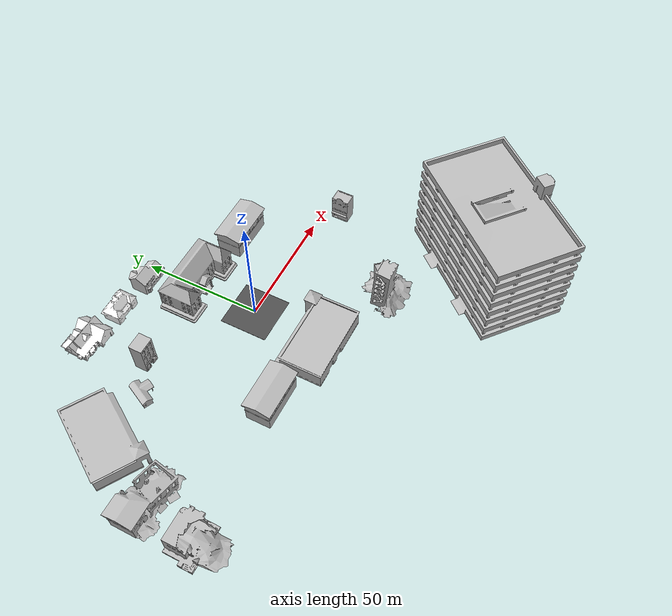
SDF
<sdf version="1.6">
 <world name="default">
  <light name="sun" type="directional">
   <pose>0 0 10 0 -0 0</pose>
   <diffuse>0.8 0.8 0.8 1</diffuse>
   <specular>0.2 0.2 0.2 1</specular>
   <attenuation>
    <range>1000</range>
    <constant>0.9</constant>
    <linear>0.01</linear>
    <quadratic>0.001</quadratic>
   </attenuation>
   <direction>-0.5 0.1 -0.9</direction>
  </light>
  <gravity>0 0 -9.8</gravity>
  <magnetic_field>6e-06 2.3e-05 -4.2e-05</magnetic_field>
  <atmosphere type="adiabatic"/>
  <physics name="default_physics" default="0" type="ode">
   <max_step_size>0.001</max_step_size>
   <real_time_factor>1</real_time_factor>
   <real_time_update_rate>1000</real_time_update_rate>
   <ode><solver><type>quick</type><iters>100</iters></solver></ode>
  </physics>
  <scene><ambient>0.4 0.4 0.4 1</ambient><background>0.7 0.7 0.7 1</background><shadows>1</shadows></scene>
  <spherical_coordinates>
   <surface_model>EARTH_WGS84</surface_model>
   <latitude_deg>10.772877</latitude_deg>
   <longitude_deg>106.659404</longitude_deg>
   <elevation>0.5</elevation>
   <heading_deg>90.0</heading_deg>
  </spherical_coordinates>
  <model name="asphalt_plane">
   <static>1</static>
   <link name="link">
    <collision name="collision"><geometry><box><size>20 20 0.1</size></box></geometry></collision>
    <visual name="visual">
     <cast_shadows>0</cast_shadows>
     <geometry><box><size>20 20 0.1</size></box></geometry>
     <material>
      <script>
       <uri>model://asphalt_plane/materials/scripts</uri>
       <uri>model://asphalt_plane/materials/textures</uri>
       <name>vrc/asphalt</name>
      </script>
     </material>
    </visual>
   </link>
  </model>
  <model name="school">
   <static>1</static>
   <link name="link">
    <collision name="collision">
     <geometry><mesh><uri>model://school/meshes/school.dae</uri></mesh></geometry>
    </collision>
    <visual name="visual"><geometry><mesh><uri>model://school/meshes/school.dae</uri></mesh></geometry></visual>
   </link>
   <pose>0.636377 29.532 0 0 -0 0</pose>
  </model>
  <model name="grocery_store">
   <static>1</static>
   <link name="link">
    <collision name="collision">
     <pose>0 0 4.04605 0 -0 0</pose>
     <geometry><box><size>32.1985 17.5425 8.09209</size></box></geometry>
    </collision>
    <visual name="visual">
     <pose>0 -1.96155 0 0 -0 0</pose>
     <geometry><mesh><uri>model://grocery_store/meshes/grocery_store.dae</uri></mesh></geometry>
    </visual>
   </link>
   <pose>-2.29865 -30.4508 0 0 -0 0</pose>
  </model>
  <model name="fire_station">
   <static>1</static>
   <link name="link">
    <collision name="main">
     <pose>0 -0.135 5 0 -0 0</pose>
     <geometry><box><size>19.98 9.68 10</size></box></geometry>
    </collision>
    <collision name="front_top">
     <pose>0 4.957 7 0 -0 0</pose>
     <geometry><box><size>20 0.515 6</size></box></geometry>
    </collision>
    <collision name="column_0">
     <pose>9.333 4.957 2 0 -0 0</pose>
     <geometry><box><size>1.315 0.515 4</size></box></geometry>
    </collision>
    <collision name="column_1">
     <pose>3.33 4.957 2 0 -0 0</pose>
     <geometry><box><size>2.63 0.515 4</size></box></geometry>
    </collision>
    <collision name="column_2">
     <pose>-3.33 4.957 2 0 -0 0</pose>
     <geometry><box><size>2.63 0.515 4</size></box></geometry>
    </collision>
    <collision name="column_3">
     <pose>-9.333 4.957 2 0 -0 0</pose>
     <geometry><box><size>1.315 0.515 4</size></box></geometry>
    </collision>
    <collision name="roof_back">
     <pose>0 -2.742 10.467 0.25 -0 0</pose>
     <geometry><box><size>21.47 6.12 0.28</size></box></geometry>
    </collision>
    <collision name="roof_front">
     <pose>0 3.12 10.467 -0.25 0 0</pose>
     <geometry><box><size>21.47 6.12 0.28</size></box></geometry>
    </collision>
    <collision name="roof_base">
     <pose>0 0.188 9.705 0 -0 0</pose>
     <geometry><box><size>21.47 11.86 0.28</size></box></geometry>
    </collision>
    <collision name="roof_filling_0">
     <pose>0 0.188 9.985 0 -0 0</pose>
     <geometry><box><size>21.47 9.53 0.28</size></box></geometry>
    </collision>
    <collision name="roof_filling_1">
     <pose>0 0.188 10.14 0 -0 0</pose>
     <geometry><box><size>21.47 8.41 0.28</size></box></geometry>
    </collision>
    <collision name="roof_filling_2">
     <pose>0 0.188 10.42 0 -0 0</pose>
     <geometry><box><size>21.47 6.25 0.28</size></box></geometry>
    </collision>
    <collision name="roof_filling_3">
     <pose>0 0.188 10.7 0 -0 0</pose>
     <geometry><box><size>21.47 4.05 0.28</size></box></geometry>
    </collision>
    <collision name="roof_filling_4">
     <pose>0 0.188 10.98 0 -0 0</pose>
     <geometry><box><size>21.47 1.83 0.28</size></box></geometry>
    </collision>
    <visual name="visual">
     <geometry><mesh><uri>model://fire_station/meshes/fire_station.dae</uri></mesh></geometry>
    </visual>
   </link>
   <pose>-32.3673 -26.015 0 0 -0 0</pose>
  </model>
  <model name="House 1">
   <static>1</static>
   <link name="link">
    <collision name="collision">
     <geometry><mesh><uri>model://house_1/meshes/house_1.dae</uri><scale>1.5 1.5 1.5</scale></mesh></geometry>
    </collision>
    <visual name="visual">
     <geometry><mesh><uri>model://house_1/meshes/house_1.dae</uri><scale>1.5 1.5 1.5</scale></mesh></geometry>
     <material>
      <script>
       <uri>model://house_1/materials/scripts</uri>
       <uri>model://house_1/materials/textures</uri>
       <name>House_1/Diffuse</name>
      </script>
      <shader type="normal_map_tangent_space"><normal_map>House_1_Normal.png</normal_map></shader>
     </material>
    </visual>
   </link>
   <pose>-41.8922 51.017 0 0 -0 0</pose>
  </model>
  <model name="House 2">
   <static>1</static>
   <link name="link">
    <collision name="collision">
     <geometry><mesh><uri>model://house_2/meshes/house_2.dae</uri><scale>1.5 1.5 1.5</scale></mesh></geometry>
    </collision>
    <visual name="visual">
     <geometry><mesh><uri>model://house_2/meshes/house_2.dae</uri><scale>1.5 1.5 1.5</scale></mesh></geometry>
     <material>
      <script>
       <uri>model://house_2/materials/scripts</uri>
       <uri>model://house_2/materials/textures</uri>
       <uri>model://house_1/materials/textures</uri>
       <name>House_2/Diffuse</name>
      </script>
      <shader type="normal_map_tangent_space">
       <normal_map>model://house_1/materials/textures/House_1_Normal.png</normal_map>
      </shader>
     </material>
    </visual>
   </link>
   <pose>-24.9881 48.1114 0 0 -0 0</pose>
  </model>
  <model name="salon">
   <static>1</static>
   <link name="link">
    <collision name="collision">
     <pose>0 0 5.69469 0 -0 0</pose>
     <geometry><box><size>7.21297 5.37875 11.3894</size></box></geometry>
    </collision>
    <visual name="visual">
     <pose>0 -0.903605 0 0 -0 0</pose>
     <geometry><mesh><uri>model://salon/meshes/salon.dae</uri></mesh></geometry>
    </visual>
   </link>
   <pose>61.4007 -8.08422 0 0 0 -1.5708</pose>
  </model>
  <model name="law_office">
   <static>1</static>
   <link name="link">
    <collision name="collision">
     <pose>0 0 6.96244 0 -0 0</pose>
     <geometry><box><size>6.84401 5.43165 13.9249</size></box></geometry>
    </collision>
    <visual name="visual">
     <geometry><mesh><uri>model://law_office/meshes/law_office.dae</uri></mesh></geometry>
    </visual>
   </link>
   <pose>-39.4754 25.3808 0 0 -0 0</pose>
  </model>
  <model name="House 3">
   <static>1</static>
   <link name="link">
    <collision name="collision">
     <geometry><mesh><uri>model://house_3/meshes/house_3.dae</uri><scale>1.5 1.5 1.5</scale></mesh></geometry>
    </collision>
    <visual name="visual">
     <geometry><mesh><uri>model://house_3/meshes/house_3.dae</uri><scale>1.5 1.5 1.5</scale></mesh></geometry>
     <material>
      <script>
       <uri>model://house_3/materials/scripts</uri>
       <uri>model://house_3/materials/textures</uri>
       <uri>model://house_1/materials/textures</uri>
       <name>House_3/Diffuse</name>
      </script>
      <shader type="normal_map_tangent_space">
       <normal_map>model://house_1/materials/textures/House_1_Normal.png</normal_map>
      </shader>
     </material>
    </visual>
   </link>
   <pose>-6.01465 46.8162 0 0 -0 0</pose>
  </model>
  <model name="collapsed_industrial">
   <static>1</static>
   <link name="link">
    <collision name="collision">
     <geometry><mesh><uri>model://collapsed_industrial/meshes/collapsed_industrial.dae</uri></mesh></geometry>
    </collision>
    <visual name="visual">
     <geometry><mesh><uri>model://collapsed_industrial/meshes/collapsed_industrial.dae</uri></mesh></geometry>
    </visual>
   </link>
   <pose>31.7501 -43.2026 0 0 -0 0</pose>
  </model>
  <model name="post_office">
   <static>1</static>
   <link name="link">
    <collision name="collision">
     <geometry><mesh><uri>model://post_office/meshes/post_office.dae</uri></mesh></geometry>
    </collision>
    <visual name="visual">
     <geometry><mesh><uri>model://post_office/meshes/post_office.dae</uri></mesh></geometry>
    </visual>
   </link>
   <pose>-52.6135 18.5752 0 0 0 -2.01563</pose>
  </model>
  <model name="post_office_0">
   <static>1</static>
   <link name="link">
    <collision name="collision">
     <geometry><mesh><uri>model://post_office/meshes/post_office.dae</uri></mesh></geometry>
    </collision>
    <visual name="visual">
     <geometry><mesh><uri>model://post_office/meshes/post_office.dae</uri></mesh></geometry>
    </visual>
   </link>
   <pose>-52.6135 18.5752 0 0 0 -2.01563</pose>
  </model>
  <model name="fire_station_0">
   <static>1</static>
   <link name="link">
    <collision name="main">
     <pose>0 -0.135 5 0 -0 0</pose>
     <geometry><box><size>19.98 9.68 10</size></box></geometry>
    </collision>
    <collision name="front_top">
     <pose>0 4.957 7 0 -0 0</pose>
     <geometry><box><size>20 0.515 6</size></box></geometry>
    </collision>
    <collision name="column_0">
     <pose>9.333 4.957 2 0 -0 0</pose>
     <geometry><box><size>1.315 0.515 4</size></box></geometry>
    </collision>
    <collision name="column_1">
     <pose>3.33 4.957 2 0 -0 0</pose>
     <geometry><box><size>2.63 0.515 4</size></box></geometry>
    </collision>
    <collision name="column_2">
     <pose>-3.33 4.957 2 0 -0 0</pose>
     <geometry><box><size>2.63 0.515 4</size></box></geometry>
    </collision>
    <collision name="column_3">
     <pose>-9.333 4.957 2 0 -0 0</pose>
     <geometry><box><size>1.315 0.515 4</size></box></geometry>
    </collision>
    <collision name="roof_back">
     <pose>0 -2.742 10.467 0.25 -0 0</pose>
     <geometry><box><size>21.47 6.12 0.28</size></box></geometry>
    </collision>
    <collision name="roof_front">
     <pose>0 3.12 10.467 -0.25 0 0</pose>
     <geometry><box><size>21.47 6.12 0.28</size></box></geometry>
    </collision>
    <collision name="roof_base">
     <pose>0 0.188 9.705 0 -0 0</pose>
     <geometry><box><size>21.47 11.86 0.28</size></box></geometry>
    </collision>
    <collision name="roof_filling_0">
     <pose>0 0.188 9.985 0 -0 0</pose>
     <geometry><box><size>21.47 9.53 0.28</size></box></geometry>
    </collision>
    <collision name="roof_filling_1">
     <pose>0 0.188 10.14 0 -0 0</pose>
     <geometry><box><size>21.47 8.41 0.28</size></box></geometry>
    </collision>
    <collision name="roof_filling_2">
     <pose>0 0.188 10.42 0 -0 0</pose>
     <geometry><box><size>21.47 6.25 0.28</size></box></geometry>
    </collision>
    <collision name="roof_filling_3">
     <pose>0 0.188 10.7 0 -0 0</pose>
     <geometry><box><size>21.47 4.05 0.28</size></box></geometry>
    </collision>
    <collision name="roof_filling_4">
     <pose>0 0.188 10.98 0 -0 0</pose>
     <geometry><box><size>21.47 1.83 0.28</size></box></geometry>
    </collision>
    <visual name="visual">
     <geometry><mesh><uri>model://fire_station/meshes/fire_station.dae</uri></mesh></geometry>
    </visual>
   </link>
   <pose>31.2423 24.6559 0 0 -0 0</pose>
  </model>
  <model name="parking_garage">
   <static>1</static>
   <link name="link">
    <collision name="collision">
     <geometry><mesh><uri>model://parking_garage/meshes/parking_garage.dae</uri></mesh></geometry>
    </collision>
    <visual name="visual">
     <geometry><mesh><uri>model://parking_garage/meshes/parking_garage.dae</uri></mesh></geometry>
    </visual>
   </link>
   <pose>61.7682 -74.0505 0 0 -0 0.864737</pose>
  </model>
  <model name="grocery_store_0">
   <static>1</static>
   <link name="link">
    <collision name="collision">
     <pose>0 0 4.04605 0 -0 0</pose>
     <geometry><box><size>32.1985 17.5425 8.09209</size></box></geometry>
    </collision>
    <visual name="visual">
     <pose>0 -1.96155 0 0 -0 0</pose>
     <geometry><mesh><uri>model://grocery_store/meshes/grocery_store.dae</uri></mesh></geometry>
    </visual>
   </link>
   <pose>-75.3476 20.1331 0 0 0 -2.12899</pose>
  </model>
  <model name="collapsed_police_station_0">
   <static>1</static>
   <link name="link">
    <collision name="collision">
     <geometry>
      <mesh><uri>model://collapsed_police_station/meshes/collapsed_police_station.dae</uri></mesh>
     </geometry>
    </collision>
    <visual name="visual">
     <geometry>
      <mesh><uri>model://collapsed_police_station/meshes/collapsed_police_station.dae</uri></mesh>
     </geometry>
    </visual>
   </link>
   <pose>-90.9039 -32.4474 0 0 -0 0</pose>
  </model>
  <model name="collapsed_fire_station_0">
   <static>1</static>
   <link name="link">
    <collision name="collision">
     <geometry><mesh><uri>model://collapsed_fire_station/meshes/collapsed_fire_station.dae</uri></mesh></geometry>
    </collision>
    <visual name="visual">
     <geometry><mesh><uri>model://collapsed_fire_station/meshes/collapsed_fire_station.dae</uri></mesh></geometry>
    </visual>
   </link>
   <pose>-85.7294 -7.11881 0 0 -0 0</pose>
  </model>
 </world>
</sdf>
